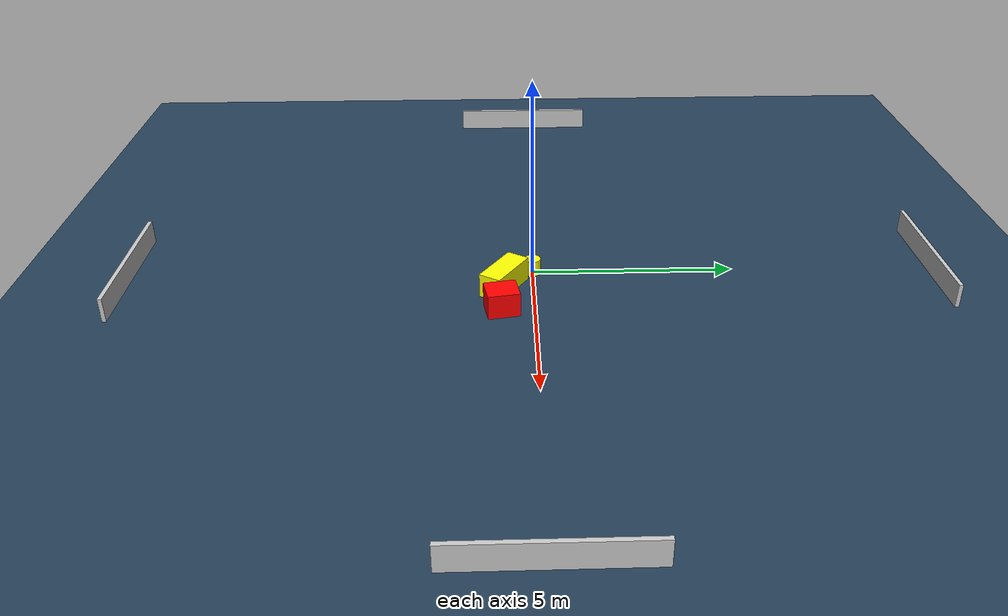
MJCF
<?xml version="1.0" ?>
<mujoco model="generated_environment">
  <option timestep="0.01" integrator="RK4" cone="elliptic"/>
  <default>
    <geom density="1"/>
  </default>
  <asset>
    <texture builtin="gradient" height="3072" name="skybox" rgb1="0.3 0.5 0.7" rgb2="0 0 0" type="skybox" width="512"/>
    <texture builtin="checker" height="300" name="groundplane" rgb1="0.2 0.3 0.4" rgb2="0.1 0.2 0.3" type="2d" width="300"/>
    <material name="groundplane" reflectance="0.2" texrepeat="5 5" texture="groundplane"/>
  </asset>
  <worldbody>
    <light dir="0 0 -1" directional="true" pos="0 0 1.5"/>
    <geom condim="3" friction="0.5 0.005 0.001" material="groundplane" name="floor" pos="0 0 0" size="0 0 0.05" type="plane"/>
    <body name="walls">
      <geom name="wall_1" condim="4" pos="-10.0 0.0 0.3" rgba="0.800000011920929 0.800000011920929 0.800000011920929 1.0" size="0.05 2.0 0.3" type="box"/>
      <geom name="wall_2" condim="4" pos="10.0 0.0 0.3" rgba="0.800000011920929 0.800000011920929 0.800000011920929 1.0" size="0.05 2.0 0.3" type="box"/>
      <geom name="wall_3" condim="4" pos="0.0 -10.0 0.3" rgba="0.800000011920929 0.800000011920929 0.800000011920929 1.0" size="2.0 0.05 0.3" type="box"/>
      <geom name="wall_4" condim="4" pos="0.0 10.0 0.3" rgba="0.800000011920929 0.800000011920929 0.800000011920929 1.0" size="2.0 0.05 0.3" type="box"/>
    </body>
    <body name="robot">
      <joint name="joint_x" type="slide" pos="0 0 0" axis="1 0 0"/>
      <joint name="joint_y" type="slide" pos="0 0 0" axis="0 1 0"/>
      <geom name="robot" type="cylinder" pos="0.0 0.0 0.2" size="0.2 0.2 0.0" mass="5.0" friction="1.0 0.005 0.0001" condim="4" rgba="1.0 1.0 0.0 1.0"/>
    </body>
    <body name="obstacle_1_movable">
      <geom name="obstacle_1_movable" condim="4" pos="0.7200293424160911 -0.7182939613471198 0.3" euler="0 0 147.4668263737319" friction="0.0 0.005 0.001" rgba="1.0 1.0 0.0 1.0" size="0.663362202998435 0.28735096421101575 0.3" type="box" mass="0.1"/>
      <joint type="free"/>
    </body>
    <body name="obstacle_2_static">
      <geom name="obstacle_2_static" condim="4" pos="1.7952048295972323 -0.7833561673274572 0.3" euler="0 0 279.9534537924956" friction="0.0 0.005 0.001" rgba="1.0 0.0 0.0 1.0" size="0.38639997153310324 0.3394036738854548 0.3" type="box"/>
    </body>
  </worldbody>
  <actuator>
    <motor name="actuator_x" joint="joint_x" gear="1" ctrlrange="-1 1"/>
    <motor name="actuator_y" joint="joint_y" gear="1" ctrlrange="-1 1"/>
  </actuator>
</mujoco>
